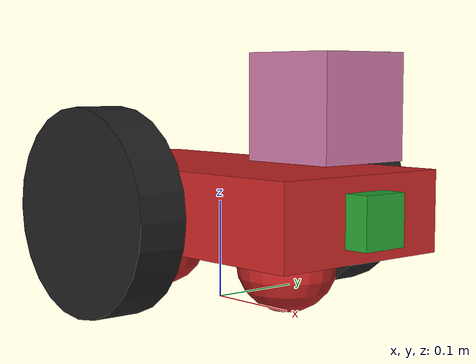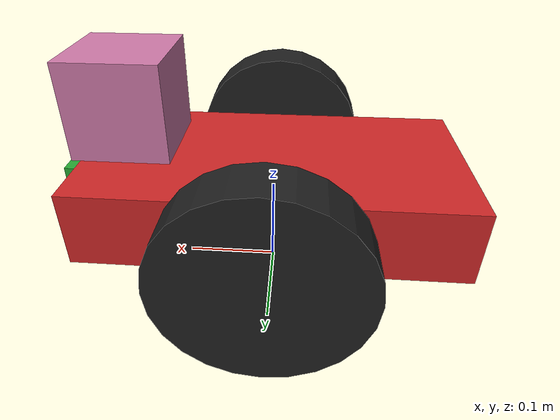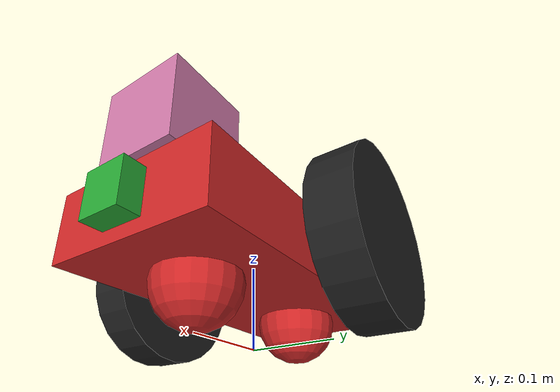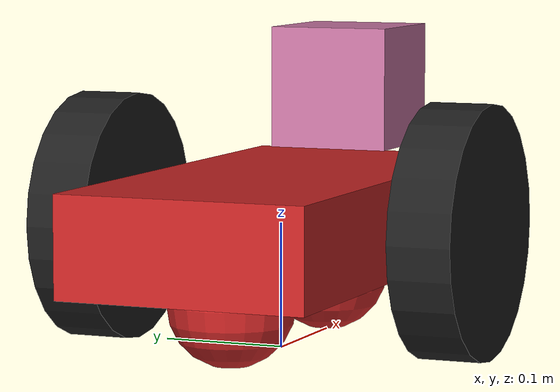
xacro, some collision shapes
<?xml version='1.0'?>

<robot name="my_robot" xmlns:xacro="http://www.ros.org/wiki/xacro">
<xacro:include filename="materials.xacro"/>
<xacro:include filename="$(find my_robot)/urdf/my_robot.gazebo" />
<link name="robot_footprint"></link>
<joint name="robot_footprint_joint" type="fixed">
  <origin xyz="0 0 0.1" rpy="0 0 0" />
  <parent link="robot_footprint"/>
  <child link="chassis" />
</joint>

<link name='chassis'>
  <pose>0 0 0.1 0 0 0</pose>

  <inertial>
    <mass value="15.0"/>
    <origin xyz="0.0 0 0" rpy="0 0 0"/>
    <inertia
        ixx="0.1" ixy="0" ixz="0"
        iyy="0.1" iyz="0"
        izz="0.1"
    />
  </inertial>

  <collision name='chassis_collision'>
    <origin xyz="0 0 0" rpy="0 0 0"/>
    <geometry>
      <box size=".4 .2 .08"/>
    </geometry>
  </collision>

  <visual name='chassis_visual'>
    <origin xyz="0 0 0" rpy="0 0 0"/>
    <geometry>
      <box size=".4 .2 .08"/>
    </geometry>
  </visual>

<gazebo reference="chassis">
  <material>Gazebo/Red</material>
</gazebo>

  <collision name='back_caster_collision'>
    <origin xyz="-0.10 0 -0.05" rpy="0 0 0"/>
    <geometry>
      <sphere radius="0.0499"/>
    </geometry>
  </collision>

  <visual name='back_caster_visual'>
    <origin xyz="-0.10 0 -0.05" rpy=" 0 0 0"/>
    <geometry>
      <sphere radius="0.05"/>
    </geometry>
  </visual>

  <collision name='front_caster_collision'>
    <origin xyz="0.10 0 -0.05" rpy=" 0 0 0"/>
    <geometry>
      <sphere radius="0.0499"/>
    </geometry>
  </collision>

  <visual name='front_caster_visual'>
    <origin xyz="0.10 0 -0.05" rpy=" 0 0 0"/>
    <geometry>
      <sphere radius="0.05"/>
    </geometry>
  </visual>
</link>

<link name='left_wheel'>
<inertial>
    <mass value="5.0"/>
    <origin xyz="0.0 0 0" rpy=" 0 1.5707 1.5707"/>
    <inertia
        ixx="0.1" ixy="0" ixz="0"
        iyy="0.1" iyz="0"
        izz="0.1"
    />
  </inertial>

  <collision name='left_wheel_collision'>
    <origin xyz="0.0 0 0" rpy=" 0 1.5707 1.5707"/>
    <geometry>
      <cylinder radius="0.1" length="0.05"/>
    </geometry>

  </collision>

  <visual name='left_wheel_visual'>
    <origin xyz="0 0 0" rpy=" 0 1.5707 1.5707"/>
    <geometry>
      <cylinder radius="0.1" length="0.05"/>
    </geometry>
  </visual>
</link>

<gazebo reference="left_wheel">
   <material>Gazebo/Black</material>
</gazebo>

<joint type="continuous" name="left_wheel_hinge">
    <origin xyz="0 0.15 0" rpy="0 0 0"/>
    <child link="left_wheel"/>
    <parent link="chassis"/>
    <axis xyz="0 1 0" rpy="0 0 0"/>
    <limit effort="10000" velocity="1000"/>
    <dynamics damping="1.0" friction="1.0"/>
   <commandTopic>cmd_vel</commandTopic>
  </joint>

<link name='right_wheel'>
<inertial>
    <mass value="5.0"/>
    <origin xyz="0 0 0" rpy=" 0 1.5707 1.5707"/>
    <inertia
        ixx="0.1" ixy="0" ixz="0"
        iyy="0.1" iyz="0"
        izz="0.1"
    />
  </inertial>

  <collision name='right_wheel_collision'>
    <origin xyz="0.0 0 0" rpy=" 0 1.5707 1.5707"/>
    <geometry>
      <cylinder radius="0.1" length="0.05"/>
    </geometry>
  </collision>

  <visual name='right_wheel_visual'>
    <origin xyz="0 0 0" rpy=" 0 1.5707 1.5707"/>
    <geometry>
      <cylinder radius="0.1" length="0.05"/>
    </geometry>
  </visual>
</link>

<gazebo reference="right_wheel">
   <material>Gazebo/Black</material>
</gazebo>

<joint type="continuous" name="right_wheel_hinge">
    <origin xyz="0 -0.15 0" rpy="0 0 0"/>
    <child link="right_wheel"/>
    <parent link="chassis"/>
    <axis xyz="0 1 0" rpy="0 0 0"/>
    <limit effort="10000" velocity="1000"/>
    <dynamics damping="1.0" friction="1.0"/>
    <commandTopic>cmd_vel</commandTopic>
  </joint>

<!-- Camera link and joint added -->
<link name="camera">
  <inertial>
     <mass value="0.1"/>
     <origin xyz="0 0 0" rpy="0 0 0"/>
     <inertia
       ixx="1e-6" ixy="0" ixz="0"
       iyy="1e-6" iyz="0"
       izz="1e-6"
     />
  </inertial>

  <collision name="camera_collision">
    <origin xyz="0 0 0" rpy="0 0 0"/>
    <geometry>
      <box size="0.05 0.05 0.05"/>
    </geometry>
  </collision>

  <visual name="camera_visual">
    <origin xyz="0 0 0" rpy="0 0 0"/>
    <geometry>
      <box size="0.05 0.05 0.05"/>
    </geometry>
  </visual>

</link>

<gazebo reference="camera">
   <material>Gazebo/Green</material>
</gazebo>

<joint type="fixed" name="camera_joint">
    <origin xyz="0.2 0 0" rpy="0 0 0"/>
    <child link="camera"/>
    <parent link="chassis"/>
    <imageTopicName>rgb/image_raw</imageTopicName>
  </joint>

  <joint name="camera_optical_joint" type="fixed">
    <origin xyz="0 0 0" rpy="-1.5707 0 -1.5707"/>
    <parent link="camera"/>
    <child link="camera_link_optical"/>
  </joint>

  <link name="camera_link_optical">
  </link>

<!-- Lidar Link and joint -->
<link name="hokuyo">
   <inertial>
     <mass value="1e-6"/>
     <origin xyz="0 0 0" rpy="0 0 0"/>
     <inertia
       ixx="1e-6" ixy="0" ixz="0"
       iyy="1e-6" iyz="0"
       izz="1e-6"
     />
   </inertial>

   <collision name="hokuyo_collision">
     <origin xyz="0 0 0" rpy="0 0 0"/>
     <geometry>
       <box size="0.1 0.1 0.1"/>
     </geometry>
   </collision>

   <visual name="hokuyo_visual">
      <origin xyz="0 0 0" rpy="0 0 0"/>
     <geometry>
       <mesh filename="package://my_robot/meshes/hokuyo.dae" scale="1 1 1"/>
     </geometry>

   </visual>

</link>

<joint type="fixed" name="hokuyo_joint">
    <origin xyz="0.15 0 0.1" rpy="0 0 0"/>
    <child link="hokuyo"/>
    <parent link="chassis"/>
    <axis xyz="0 1 0"/>
    <topicName>/scan</topicName>
</joint>

</robot>
